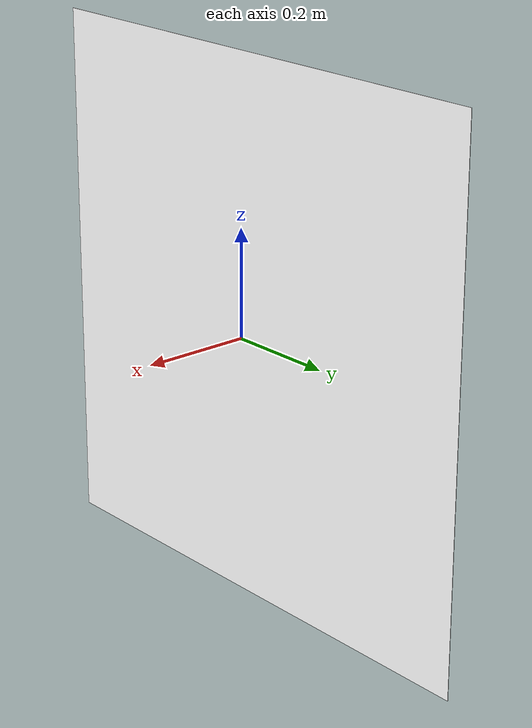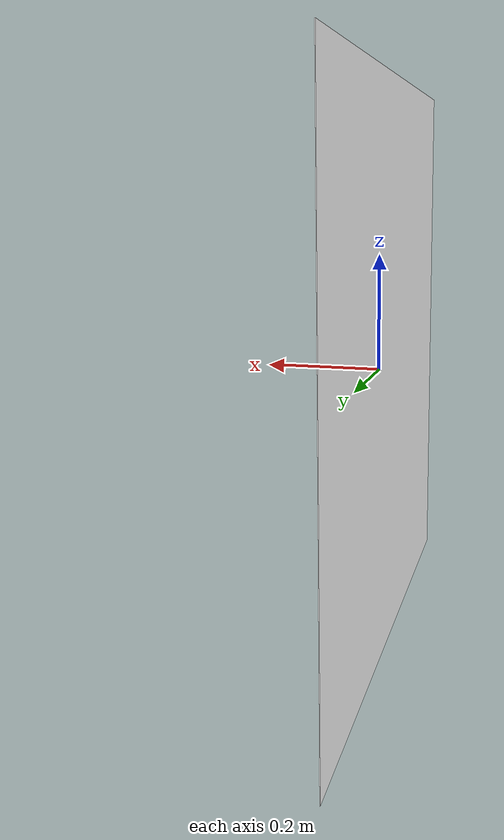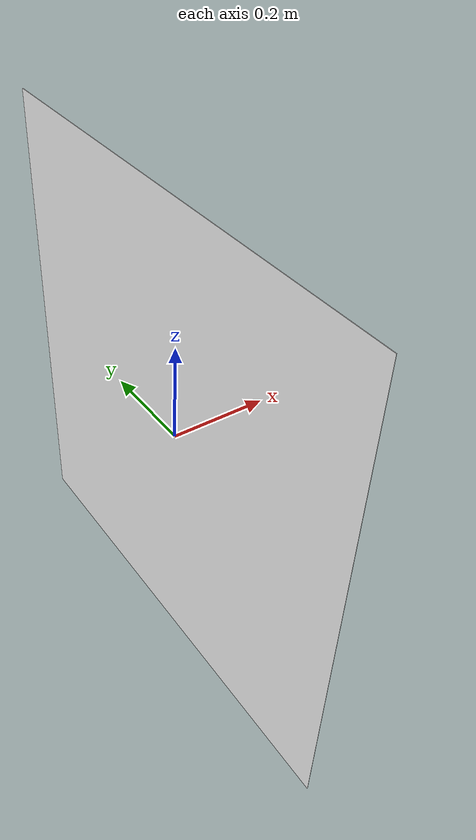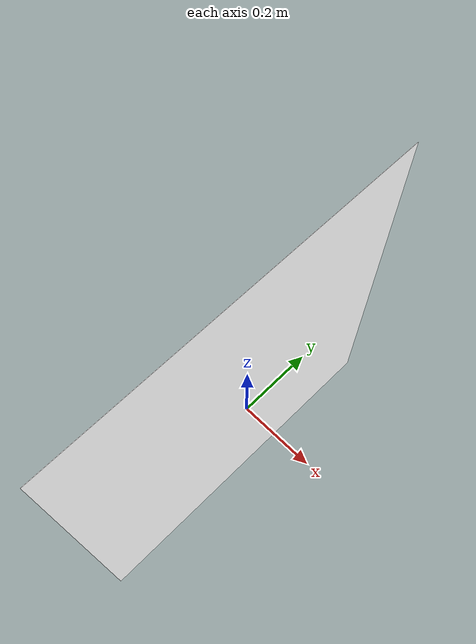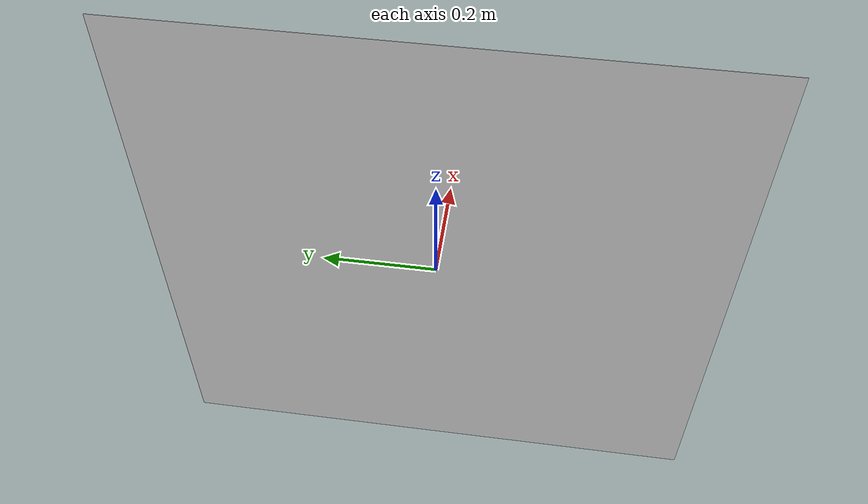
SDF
<?xml version="1.0"?>
<sdf version="1.8">
  <model name="aruco_marker_1">
    <static>true</static>
    <link name="link">
      <collision name="backing_collision">
        <pose>0 0 0 0 1.5708 0</pose>
        <geometry>
          <box>
            <size>0.03 1.1 1.1</size>
          </box>
        </geometry>
      </collision>
      <visual name="marker_visual">
        <pose>-0.02 0 0 0 1.5708 0</pose>
        <geometry>
          <plane>
            <normal>0 0 1</normal>
            <size>1.0 1.0</size>
          </plane>
        </geometry>
        <material>
          <ambient>1 1 1 1</ambient>
          <diffuse>1 1 1 1</diffuse>
          <specular>0 0 0 1</specular>
          <pbr>
            <metal>
              <albedo_map>model://aruco_marker_1/materials/textures/aruco_marker_1.png</albedo_map>
              <roughness>1.0</roughness>
              <metalness>0.0</metalness>
            </metal>
          </pbr>
        </material>
      </visual>
    </link>
  </model>
</sdf>
